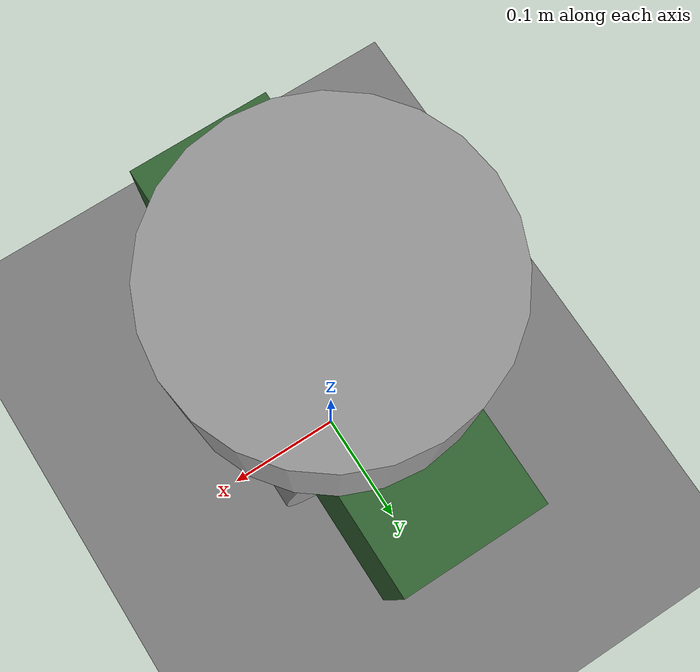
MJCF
<?xml version="1.0"?>
<mujoco model="segway">
  <option timestep="0.005"/>
  <default>
    <default class="wheel">
      <geom type="cylinder" friction="2 0.005 0.0001"/>
    </default>
  </default>

  <asset>
    <texture name="grid" type="2d" builtin="checker" width="512" height="512" rgb2="0 0 0" rgb1="1 1 1"/>
    <material name="grid" texture="grid" texrepeat="2 2" texuniform="true" reflectance="0.0"/>

    <!-- Wheel stripe texture for rotation visibility -->
    <texture name="wheel_stripe" type="2d" builtin="checker" width="256" height="256" rgb1="1 1 1" rgb2="0.2 0.2 0.2"/>
    <material name="wheel_material" texture="wheel_stripe" texrepeat="4 1" texuniform="false" reflectance="0.3"/>
  </asset>

  <worldbody>
    <geom name="ground" type="plane" size="5 5 .05" pos="0 0 0.0" material="grid"/>
    <light name="spotlight" mode="targetbodycom" target="segway" ambient=".8 .8 .8" diffuse=".8 .8 .8" specular="0.3 0.3 0.3" pos="0 -6 4" cutoff="30"/>
    <light name="top" pos="0 0 2" mode="trackcom"/>

    <body name="segway" pos="0 0 0.075">
      <freejoint name="root"/>

      <!-- Chassis -->
      <geom name="chassis" type="box" size="0.05 0.155 0.12" pos="0 0 0.12" mass="4.75" rgba="0.2 0.4 0.2 1"/>

      <!-- Single centered wheel with axis parallel to ground (y-axis) -->
      <body name="ground_wheel" pos="0 0 0" quat="0.7071 0.7071 0 0">
        <joint name="joint_ground_wheel" type="hinge" axis="0 0 1" damping="0.05"/>
        <geom name="wheel_geom" class="wheel" size="0.075 0.05" mass="0.32" material="wheel_material"/>
      </body>

      <!-- Reaction wheel -->
      <body name="reaction_wheel" pos="0 0 0.3">
        <joint name="joint_reaction_wheel" type="hinge" axis="0 0 1" damping="0.01"/>
        <geom name="reaction_wheel" type="cylinder" size="0.1 0.05" pos="0 0 0" mass="0.5" material="wheel_material"/>
      </body>
    </body>
  </worldbody>

  <!-- Single actuator for wheel -->
  <actuator>
    <motor name="wheels_motor" joint="joint_ground_wheel" gear="1" ctrlrange="-5.0 5.0"/>
  </actuator>
  <actuator>
    <motor name="reaction_wheel_motor" joint="joint_reaction_wheel" gear="1" ctrlrange="-5 5"/>
  </actuator>

</mujoco>
